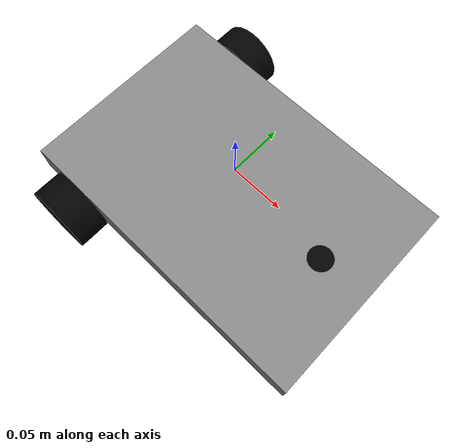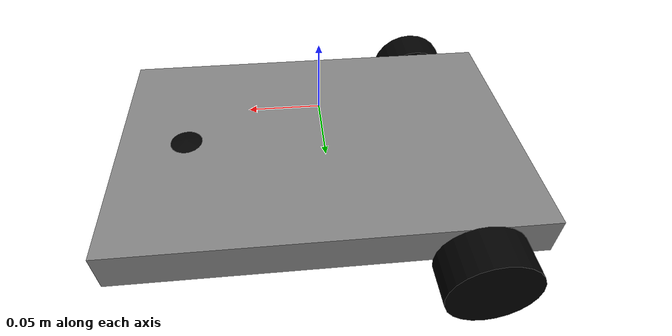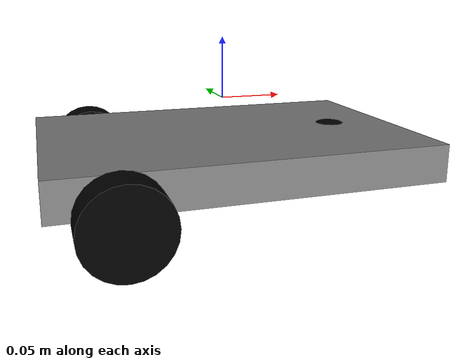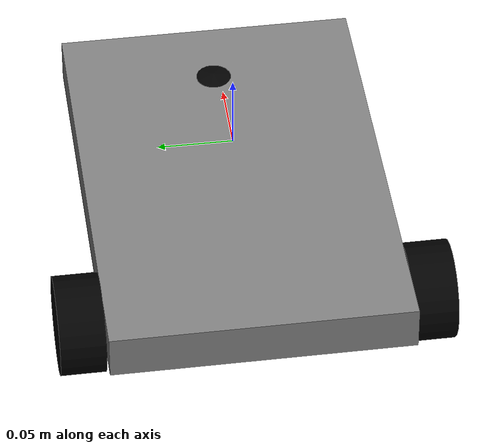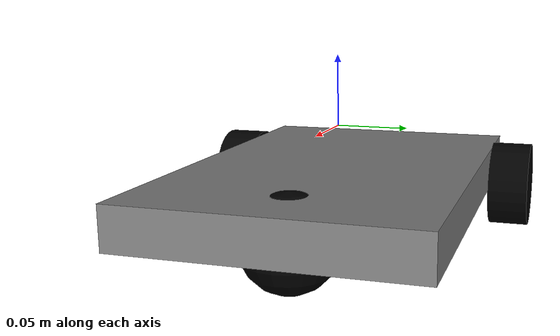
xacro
<?xml version="1.0"?>
<robot name="cart" xmlns:xacro="http://ros.org/wiki/xacro">

  <!-- Includes -->
  <xacro:include filename="$(find hardware_navigation)/urdf/material.xacro" />
  <xacro:include filename="$(find hardware_navigation)/urdf/macros.xacro" />

  <!-- Robot Constants -->
  <xacro:property name="base_width" value="0.2"/>
  <xacro:property name="base_length" value="0.3"/>
  <xacro:property name="base_height" value="0.03"/>

  <xacro:property name="wheel_radius" value="0.0325"/>
  <xacro:property name="wheel_width" value="0.03"/>
  <xacro:property name="wheel_ygap" value="0.015"/>
  <xacro:property name="wheel_zoff" value="0.015"/>
  <xacro:property name="wheel_xoff" value="0.1"/>

  <xacro:property name="caster_xoff" value="0.1"/>

  <!-- Robot Footprint -->
  <link name="base_footprint"/>

  <joint name="base_joint" type="fixed">
    <parent link="base_footprint"/>
    <child link="base_link"/>
    <!-- Slight lift added to avoid sink -->
    <origin xyz="0.0 0.0 ${-(wheel_radius + wheel_zoff) + 0.005}" rpy="0 0 0"/>
  </joint>
  <!-- Robot Base -->
  <link name="base_link">
    <collision>
      <geometry>
        <box size="${base_length} ${base_width} ${base_height}"/>
      </geometry>
    </collision>
    <xacro:box_inertia m="15" w="${base_width}" d="${base_length}" h="${base_height}"/>
    <visual>
      <geometry>
        <box size="${base_length} ${base_width} ${base_height}"/>
      </geometry>
      <material name="grey">
        <color rgba="0.5 0.5 0.5 1.0"/>
      </material>
    </visual>
  </link>

  <!-- Wheel Macro Definition -->
  <xacro:macro name="wheel" params="prefix x_reflect y_reflect">
    <link name="${prefix}_link">
      <collision>
        <origin xyz="0 0 0" rpy="${pi/2} 0 0"/>
        <geometry>
          <cylinder radius="${wheel_radius}" length="${wheel_width}"/>
        </geometry>
      </collision>
      <xacro:cylinder_inertia m="0.5" r="${wheel_radius}" h="${wheel_width}"/>
      <visual>
        <origin xyz="0 0 0" rpy="${pi/2} 0 0"/>
        <geometry>
          <cylinder radius="${wheel_radius}" length="${wheel_width}"/>
        </geometry>
        <material name="black"/>
          <color rgba="0.0 0.0 0.0 1.0"/>
      </visual>
    </link>

    <joint name="${prefix}_joint" type="continuous">
      <parent link="base_link"/>
      <child link="${prefix}_link"/>
      <origin xyz="${x_reflect * wheel_xoff} ${y_reflect * (base_width / 2 + wheel_ygap)} ${-wheel_zoff}" rpy="0 0 0"/>
      <axis xyz="0 1 0"/>
    </joint>
  </xacro:macro>

  <!-- Instantiate Left & Right Wheels -->
  <xacro:wheel prefix="left_wheel" x_reflect="-1" y_reflect="1"/>
  <xacro:wheel prefix="right_wheel" x_reflect="-1" y_reflect="-1"/>

  <!-- Front Caster Wheel -->
  <link name="front_caster">
    <collision>
      <origin xyz="0 0 0" rpy="0 0 0"/>
      <geometry>
        <sphere radius="${(wheel_radius + wheel_zoff - base_height / 2)}"/>
      </geometry>
    </collision>
    <!-- Reduced mass to avoid drag -->
    <xacro:sphere_inertia m="0.05" r="${(wheel_radius + wheel_zoff - base_height / 2)}"/>
    <visual>
      <geometry>
        <sphere radius="${(wheel_radius + wheel_zoff - base_height / 2)}"/>
      </geometry>
      <material name="black"/>
        <color rgba="0.0 0.0 0.0 1.0"/>s
    </visual>
  </link>
  <joint name="caster_joint" type="fixed">
    <parent link="base_link"/>
    <child link="front_caster"/>
    <origin xyz="${caster_xoff} 0.0 ${-(base_height / 2)}" rpy="0 0 0"/>
  </joint>
  <!-- Gazebo-specific friction tuning for caster -->
  <gazebo reference="front_caster">
    <mu1>0.0</mu1>
    <mu2>0.0</mu2>
    <material>Gazebo/Black</material>
  </gazebo>
</robot>

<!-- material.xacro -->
<robot>

  <material name="black">
    <color rgba="0.0 0.0 0.0 1.0"/>
  </material>

  <material name="white">
    <color rgba="1.0 1.0 1.0 1.0"/>
  </material>

  <material name="red">
    <color rgba="0.8 0.0 0.0 1.0"/>
  </material>

  <material name="blue">
    <color rgba="0.0 0.0 0.8 1.0"/>
  </material>

  <material name="green">
    <color rgba="0.0 0.8 0.0 1.0"/>
  </material>

  <material name="grey">
    <color rgba="0.5 0.5 0.5 1.0"/>
  </material>
</robot>

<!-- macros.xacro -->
<robot name="cart"
    xmlns:xacro="http://www.ros.org/wiki/xacro">

  <!-- Define inertial property macros  -->
  <xacro:macro name="box_inertia" params="m w h d">
    <inertial>
      <origin xyz="0 0 0" rpy="${pi/2} 0 ${pi/2}"/>
      <mass value="${m}"/>
      <inertia ixx="${(m/12) * (h*h + d*d)}" ixy="0.0" ixz="0.0" iyy="${(m/12) * (w*w + d*d)}" iyz="0.0" izz="${(m/12) * (w*w + h*h)}"/>
    </inertial>
  </xacro:macro>

  <xacro:macro name="cylinder_inertia" params="m r h">
    <inertial>
      <origin xyz="0 0 0" rpy="${pi/2} 0 0" />
      <mass value="${m}"/>
      <inertia ixx="${(m/12) * (3*r*r + h*h)}" ixy = "0" ixz = "0" iyy="${(m/12) * (3*r*r + h*h)}" iyz = "0" izz="${(m/2) * (r*r)}"/>
    </inertial>
  </xacro:macro>

  <xacro:macro name="sphere_inertia" params="m r">
    <inertial>
      <mass value="${m}"/>
      <inertia ixx="${(2/5) * m * (r*r)}" ixy="0.0" ixz="0.0" iyy="${(2/5) * m * (r*r)}" iyz="0.0" izz="${(2/5) * m * (r*r)}"/>
    </inertial>
  </xacro:macro>

</robot>
